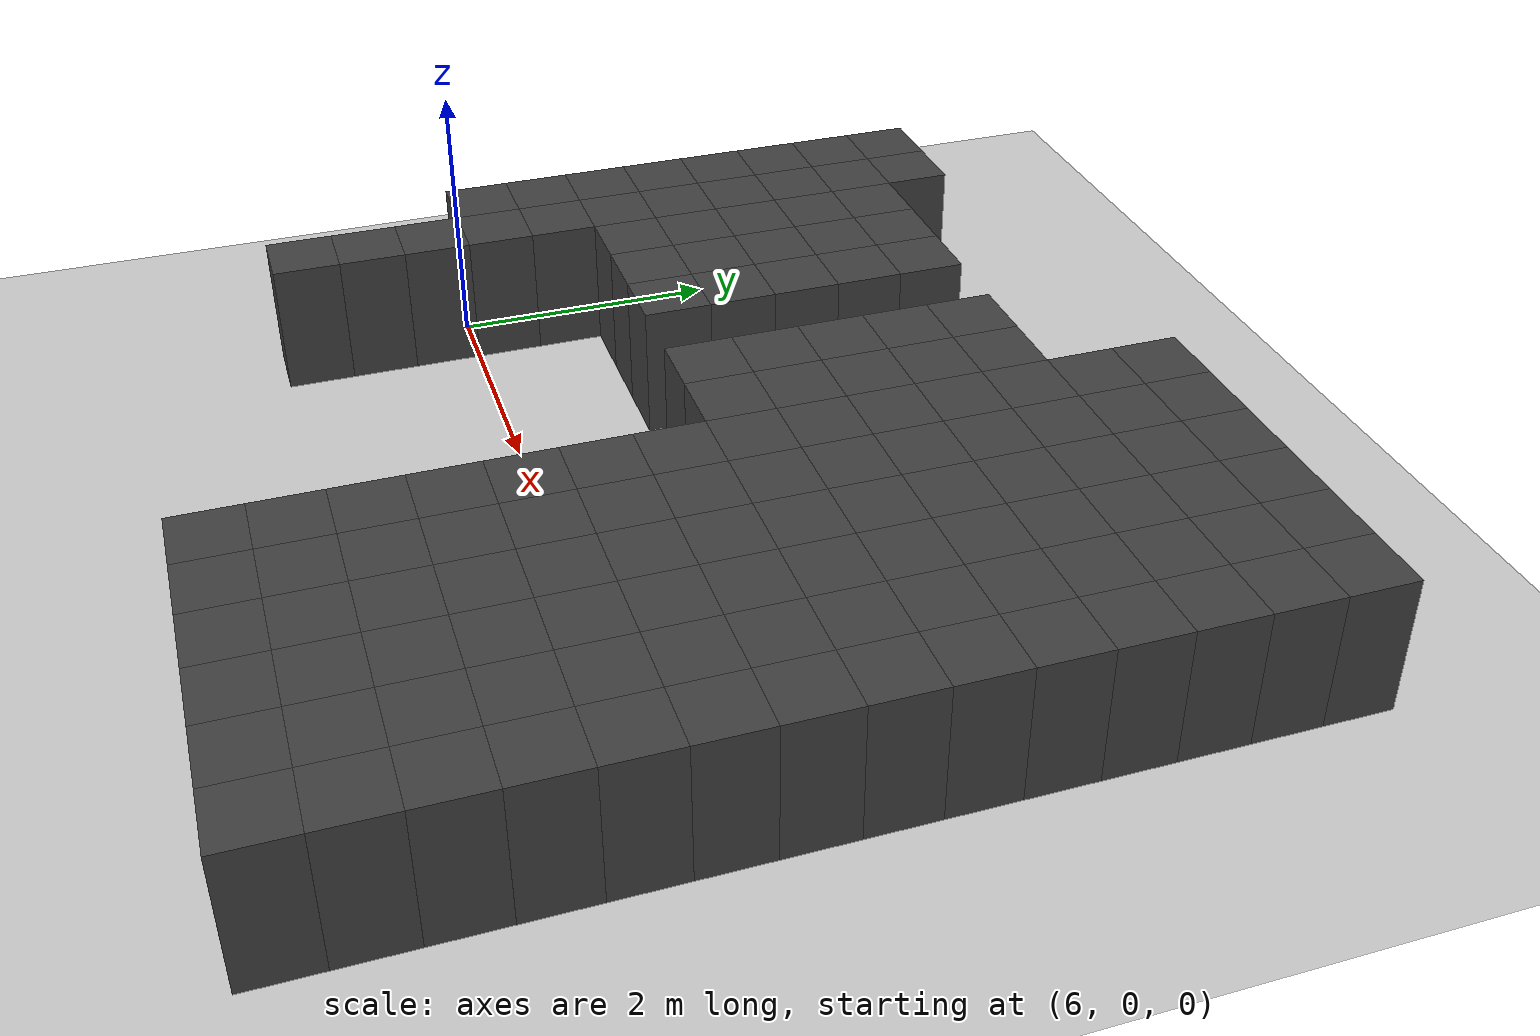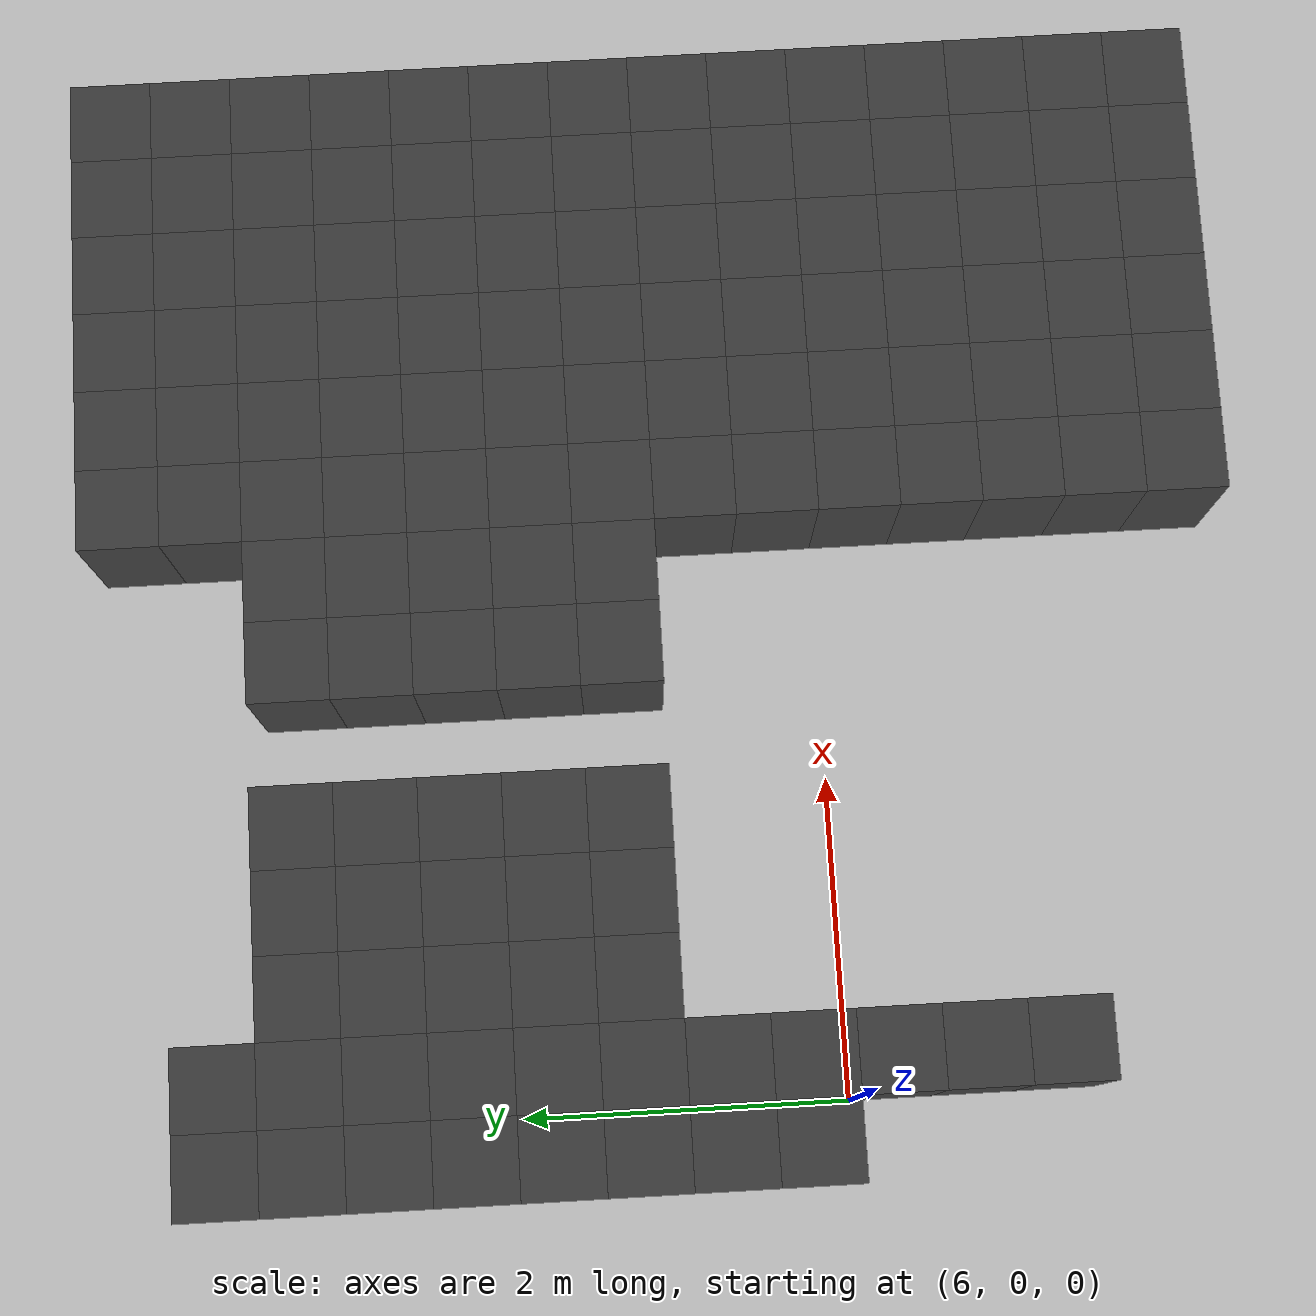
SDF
<sdf version="1.7">
 <world name="map_14980">
  <model name="ground_plane">
   <static>true</static>
   <link name="link">
    <collision name="collision">
     <geometry><plane><normal>0 0 1</normal><size>200 200</size></plane></geometry>
    </collision>
    <visual name="visual">
     <geometry><plane><normal>0 0 1</normal><size>200 200</size></plane></geometry>
     <material><ambient>0.8 0.8 0.8 1</ambient><diffuse>0.8 0.8 0.8 1</diffuse></material>
    </visual>
   </link>
  </model>
  <model name="maze_environment">
   <static>true</static>
   <link name="wall_600">
    <pose>9.750 4.250 0.500 0 0 0</pose>
    <collision name="col"><geometry><box><size>0.5 0.5 1.0</size></box></geometry></collision>
    <visual name="vis">
     <geometry><box><size>0.5 0.5 1.0</size></box></geometry>
     <material><ambient>0.15 0.15 0.15 1</ambient><diffuse>0.25 0.25 0.25 1</diffuse></material>
    </visual>
   </link>
   <link name="wall_601">
    <pose>10.250 4.250 0.500 0 0 0</pose>
    <collision name="col"><geometry><box><size>0.5 0.5 1.0</size></box></geometry></collision>
    <visual name="vis">
     <geometry><box><size>0.5 0.5 1.0</size></box></geometry>
     <material><ambient>0.15 0.15 0.15 1</ambient><diffuse>0.25 0.25 0.25 1</diffuse></material>
    </visual>
   </link>
   <link name="wall_602">
    <pose>10.750 4.250 0.500 0 0 0</pose>
    <collision name="col"><geometry><box><size>0.5 0.5 1.0</size></box></geometry></collision>
    <visual name="vis">
     <geometry><box><size>0.5 0.5 1.0</size></box></geometry>
     <material><ambient>0.15 0.15 0.15 1</ambient><diffuse>0.25 0.25 0.25 1</diffuse></material>
    </visual>
   </link>
   <link name="wall_603">
    <pose>11.250 4.250 0.500 0 0 0</pose>
    <collision name="col"><geometry><box><size>0.5 0.5 1.0</size></box></geometry></collision>
    <visual name="vis">
     <geometry><box><size>0.5 0.5 1.0</size></box></geometry>
     <material><ambient>0.15 0.15 0.15 1</ambient><diffuse>0.25 0.25 0.25 1</diffuse></material>
    </visual>
   </link>
   <link name="wall_604">
    <pose>11.750 4.250 0.500 0 0 0</pose>
    <collision name="col"><geometry><box><size>0.5 0.5 1.0</size></box></geometry></collision>
    <visual name="vis">
     <geometry><box><size>0.5 0.5 1.0</size></box></geometry>
     <material><ambient>0.15 0.15 0.15 1</ambient><diffuse>0.25 0.25 0.25 1</diffuse></material>
    </visual>
   </link>
   <link name="wall_605">
    <pose>12.250 4.250 0.500 0 0 0</pose>
    <collision name="col"><geometry><box><size>0.5 0.5 1.0</size></box></geometry></collision>
    <visual name="vis">
     <geometry><box><size>0.5 0.5 1.0</size></box></geometry>
     <material><ambient>0.15 0.15 0.15 1</ambient><diffuse>0.25 0.25 0.25 1</diffuse></material>
    </visual>
   </link>
   <link name="wall_624">
    <pose>5.750 3.750 0.500 0 0 0</pose>
    <collision name="col"><geometry><box><size>0.5 0.5 1.0</size></box></geometry></collision>
    <visual name="vis">
     <geometry><box><size>0.5 0.5 1.0</size></box></geometry>
     <material><ambient>0.15 0.15 0.15 1</ambient><diffuse>0.25 0.25 0.25 1</diffuse></material>
    </visual>
   </link>
   <link name="wall_625">
    <pose>6.250 3.750 0.500 0 0 0</pose>
    <collision name="col"><geometry><box><size>0.5 0.5 1.0</size></box></geometry></collision>
    <visual name="vis">
     <geometry><box><size>0.5 0.5 1.0</size></box></geometry>
     <material><ambient>0.15 0.15 0.15 1</ambient><diffuse>0.25 0.25 0.25 1</diffuse></material>
    </visual>
   </link>
   <link name="wall_626">
    <pose>9.750 3.750 0.500 0 0 0</pose>
    <collision name="col"><geometry><box><size>0.5 0.5 1.0</size></box></geometry></collision>
    <visual name="vis">
     <geometry><box><size>0.5 0.5 1.0</size></box></geometry>
     <material><ambient>0.15 0.15 0.15 1</ambient><diffuse>0.25 0.25 0.25 1</diffuse></material>
    </visual>
   </link>
   <link name="wall_627">
    <pose>10.250 3.750 0.500 0 0 0</pose>
    <collision name="col"><geometry><box><size>0.5 0.5 1.0</size></box></geometry></collision>
    <visual name="vis">
     <geometry><box><size>0.5 0.5 1.0</size></box></geometry>
     <material><ambient>0.15 0.15 0.15 1</ambient><diffuse>0.25 0.25 0.25 1</diffuse></material>
    </visual>
   </link>
   <link name="wall_628">
    <pose>10.750 3.750 0.500 0 0 0</pose>
    <collision name="col"><geometry><box><size>0.5 0.5 1.0</size></box></geometry></collision>
    <visual name="vis">
     <geometry><box><size>0.5 0.5 1.0</size></box></geometry>
     <material><ambient>0.15 0.15 0.15 1</ambient><diffuse>0.25 0.25 0.25 1</diffuse></material>
    </visual>
   </link>
   <link name="wall_629">
    <pose>11.250 3.750 0.500 0 0 0</pose>
    <collision name="col"><geometry><box><size>0.5 0.5 1.0</size></box></geometry></collision>
    <visual name="vis">
     <geometry><box><size>0.5 0.5 1.0</size></box></geometry>
     <material><ambient>0.15 0.15 0.15 1</ambient><diffuse>0.25 0.25 0.25 1</diffuse></material>
    </visual>
   </link>
   <link name="wall_630">
    <pose>11.750 3.750 0.500 0 0 0</pose>
    <collision name="col"><geometry><box><size>0.5 0.5 1.0</size></box></geometry></collision>
    <visual name="vis">
     <geometry><box><size>0.5 0.5 1.0</size></box></geometry>
     <material><ambient>0.15 0.15 0.15 1</ambient><diffuse>0.25 0.25 0.25 1</diffuse></material>
    </visual>
   </link>
   <link name="wall_631">
    <pose>12.250 3.750 0.500 0 0 0</pose>
    <collision name="col"><geometry><box><size>0.5 0.5 1.0</size></box></geometry></collision>
    <visual name="vis">
     <geometry><box><size>0.5 0.5 1.0</size></box></geometry>
     <material><ambient>0.15 0.15 0.15 1</ambient><diffuse>0.25 0.25 0.25 1</diffuse></material>
    </visual>
   </link>
   <link name="wall_654">
    <pose>5.750 3.250 0.500 0 0 0</pose>
    <collision name="col"><geometry><box><size>0.5 0.5 1.0</size></box></geometry></collision>
    <visual name="vis">
     <geometry><box><size>0.5 0.5 1.0</size></box></geometry>
     <material><ambient>0.15 0.15 0.15 1</ambient><diffuse>0.25 0.25 0.25 1</diffuse></material>
    </visual>
   </link>
   <link name="wall_655">
    <pose>6.250 3.250 0.500 0 0 0</pose>
    <collision name="col"><geometry><box><size>0.5 0.5 1.0</size></box></geometry></collision>
    <visual name="vis">
     <geometry><box><size>0.5 0.5 1.0</size></box></geometry>
     <material><ambient>0.15 0.15 0.15 1</ambient><diffuse>0.25 0.25 0.25 1</diffuse></material>
    </visual>
   </link>
   <link name="wall_656">
    <pose>6.750 3.250 0.500 0 0 0</pose>
    <collision name="col"><geometry><box><size>0.5 0.5 1.0</size></box></geometry></collision>
    <visual name="vis">
     <geometry><box><size>0.5 0.5 1.0</size></box></geometry>
     <material><ambient>0.15 0.15 0.15 1</ambient><diffuse>0.25 0.25 0.25 1</diffuse></material>
    </visual>
   </link>
   <link name="wall_657">
    <pose>7.250 3.250 0.500 0 0 0</pose>
    <collision name="col"><geometry><box><size>0.5 0.5 1.0</size></box></geometry></collision>
    <visual name="vis">
     <geometry><box><size>0.5 0.5 1.0</size></box></geometry>
     <material><ambient>0.15 0.15 0.15 1</ambient><diffuse>0.25 0.25 0.25 1</diffuse></material>
    </visual>
   </link>
   <link name="wall_658">
    <pose>7.750 3.250 0.500 0 0 0</pose>
    <collision name="col"><geometry><box><size>0.5 0.5 1.0</size></box></geometry></collision>
    <visual name="vis">
     <geometry><box><size>0.5 0.5 1.0</size></box></geometry>
     <material><ambient>0.15 0.15 0.15 1</ambient><diffuse>0.25 0.25 0.25 1</diffuse></material>
    </visual>
   </link>
   <link name="wall_659">
    <pose>8.750 3.250 0.500 0 0 0</pose>
    <collision name="col"><geometry><box><size>0.5 0.5 1.0</size></box></geometry></collision>
    <visual name="vis">
     <geometry><box><size>0.5 0.5 1.0</size></box></geometry>
     <material><ambient>0.15 0.15 0.15 1</ambient><diffuse>0.25 0.25 0.25 1</diffuse></material>
    </visual>
   </link>
   <link name="wall_660">
    <pose>9.250 3.250 0.500 0 0 0</pose>
    <collision name="col"><geometry><box><size>0.5 0.5 1.0</size></box></geometry></collision>
    <visual name="vis">
     <geometry><box><size>0.5 0.5 1.0</size></box></geometry>
     <material><ambient>0.15 0.15 0.15 1</ambient><diffuse>0.25 0.25 0.25 1</diffuse></material>
    </visual>
   </link>
   <link name="wall_661">
    <pose>9.750 3.250 0.500 0 0 0</pose>
    <collision name="col"><geometry><box><size>0.5 0.5 1.0</size></box></geometry></collision>
    <visual name="vis">
     <geometry><box><size>0.5 0.5 1.0</size></box></geometry>
     <material><ambient>0.15 0.15 0.15 1</ambient><diffuse>0.25 0.25 0.25 1</diffuse></material>
    </visual>
   </link>
   <link name="wall_662">
    <pose>10.250 3.250 0.500 0 0 0</pose>
    <collision name="col"><geometry><box><size>0.5 0.5 1.0</size></box></geometry></collision>
    <visual name="vis">
     <geometry><box><size>0.5 0.5 1.0</size></box></geometry>
     <material><ambient>0.15 0.15 0.15 1</ambient><diffuse>0.25 0.25 0.25 1</diffuse></material>
    </visual>
   </link>
   <link name="wall_663">
    <pose>10.750 3.250 0.500 0 0 0</pose>
    <collision name="col"><geometry><box><size>0.5 0.5 1.0</size></box></geometry></collision>
    <visual name="vis">
     <geometry><box><size>0.5 0.5 1.0</size></box></geometry>
     <material><ambient>0.15 0.15 0.15 1</ambient><diffuse>0.25 0.25 0.25 1</diffuse></material>
    </visual>
   </link>
   <link name="wall_664">
    <pose>11.250 3.250 0.500 0 0 0</pose>
    <collision name="col"><geometry><box><size>0.5 0.5 1.0</size></box></geometry></collision>
    <visual name="vis">
     <geometry><box><size>0.5 0.5 1.0</size></box></geometry>
     <material><ambient>0.15 0.15 0.15 1</ambient><diffuse>0.25 0.25 0.25 1</diffuse></material>
    </visual>
   </link>
   <link name="wall_665">
    <pose>11.750 3.250 0.500 0 0 0</pose>
    <collision name="col"><geometry><box><size>0.5 0.5 1.0</size></box></geometry></collision>
    <visual name="vis">
     <geometry><box><size>0.5 0.5 1.0</size></box></geometry>
     <material><ambient>0.15 0.15 0.15 1</ambient><diffuse>0.25 0.25 0.25 1</diffuse></material>
    </visual>
   </link>
   <link name="wall_666">
    <pose>12.250 3.250 0.500 0 0 0</pose>
    <collision name="col"><geometry><box><size>0.5 0.5 1.0</size></box></geometry></collision>
    <visual name="vis">
     <geometry><box><size>0.5 0.5 1.0</size></box></geometry>
     <material><ambient>0.15 0.15 0.15 1</ambient><diffuse>0.25 0.25 0.25 1</diffuse></material>
    </visual>
   </link>
   <link name="wall_691">
    <pose>5.750 2.750 0.500 0 0 0</pose>
    <collision name="col"><geometry><box><size>0.5 0.5 1.0</size></box></geometry></collision>
    <visual name="vis">
     <geometry><box><size>0.5 0.5 1.0</size></box></geometry>
     <material><ambient>0.15 0.15 0.15 1</ambient><diffuse>0.25 0.25 0.25 1</diffuse></material>
    </visual>
   </link>
   <link name="wall_692">
    <pose>6.250 2.750 0.500 0 0 0</pose>
    <collision name="col"><geometry><box><size>0.5 0.5 1.0</size></box></geometry></collision>
    <visual name="vis">
     <geometry><box><size>0.5 0.5 1.0</size></box></geometry>
     <material><ambient>0.15 0.15 0.15 1</ambient><diffuse>0.25 0.25 0.25 1</diffuse></material>
    </visual>
   </link>
   <link name="wall_693">
    <pose>6.750 2.750 0.500 0 0 0</pose>
    <collision name="col"><geometry><box><size>0.5 0.5 1.0</size></box></geometry></collision>
    <visual name="vis">
     <geometry><box><size>0.5 0.5 1.0</size></box></geometry>
     <material><ambient>0.15 0.15 0.15 1</ambient><diffuse>0.25 0.25 0.25 1</diffuse></material>
    </visual>
   </link>
   <link name="wall_694">
    <pose>7.250 2.750 0.500 0 0 0</pose>
    <collision name="col"><geometry><box><size>0.5 0.5 1.0</size></box></geometry></collision>
    <visual name="vis">
     <geometry><box><size>0.5 0.5 1.0</size></box></geometry>
     <material><ambient>0.15 0.15 0.15 1</ambient><diffuse>0.25 0.25 0.25 1</diffuse></material>
    </visual>
   </link>
   <link name="wall_695">
    <pose>7.750 2.750 0.500 0 0 0</pose>
    <collision name="col"><geometry><box><size>0.5 0.5 1.0</size></box></geometry></collision>
    <visual name="vis">
     <geometry><box><size>0.5 0.5 1.0</size></box></geometry>
     <material><ambient>0.15 0.15 0.15 1</ambient><diffuse>0.25 0.25 0.25 1</diffuse></material>
    </visual>
   </link>
   <link name="wall_696">
    <pose>8.750 2.750 0.500 0 0 0</pose>
    <collision name="col"><geometry><box><size>0.5 0.5 1.0</size></box></geometry></collision>
    <visual name="vis">
     <geometry><box><size>0.5 0.5 1.0</size></box></geometry>
     <material><ambient>0.15 0.15 0.15 1</ambient><diffuse>0.25 0.25 0.25 1</diffuse></material>
    </visual>
   </link>
   <link name="wall_697">
    <pose>9.250 2.750 0.500 0 0 0</pose>
    <collision name="col"><geometry><box><size>0.5 0.5 1.0</size></box></geometry></collision>
    <visual name="vis">
     <geometry><box><size>0.5 0.5 1.0</size></box></geometry>
     <material><ambient>0.15 0.15 0.15 1</ambient><diffuse>0.25 0.25 0.25 1</diffuse></material>
    </visual>
   </link>
   <link name="wall_698">
    <pose>9.750 2.750 0.500 0 0 0</pose>
    <collision name="col"><geometry><box><size>0.5 0.5 1.0</size></box></geometry></collision>
    <visual name="vis">
     <geometry><box><size>0.5 0.5 1.0</size></box></geometry>
     <material><ambient>0.15 0.15 0.15 1</ambient><diffuse>0.25 0.25 0.25 1</diffuse></material>
    </visual>
   </link>
   <link name="wall_699">
    <pose>10.250 2.750 0.500 0 0 0</pose>
    <collision name="col"><geometry><box><size>0.5 0.5 1.0</size></box></geometry></collision>
    <visual name="vis">
     <geometry><box><size>0.5 0.5 1.0</size></box></geometry>
     <material><ambient>0.15 0.15 0.15 1</ambient><diffuse>0.25 0.25 0.25 1</diffuse></material>
    </visual>
   </link>
   <link name="wall_700">
    <pose>10.750 2.750 0.500 0 0 0</pose>
    <collision name="col"><geometry><box><size>0.5 0.5 1.0</size></box></geometry></collision>
    <visual name="vis">
     <geometry><box><size>0.5 0.5 1.0</size></box></geometry>
     <material><ambient>0.15 0.15 0.15 1</ambient><diffuse>0.25 0.25 0.25 1</diffuse></material>
    </visual>
   </link>
   <link name="wall_701">
    <pose>11.250 2.750 0.500 0 0 0</pose>
    <collision name="col"><geometry><box><size>0.5 0.5 1.0</size></box></geometry></collision>
    <visual name="vis">
     <geometry><box><size>0.5 0.5 1.0</size></box></geometry>
     <material><ambient>0.15 0.15 0.15 1</ambient><diffuse>0.25 0.25 0.25 1</diffuse></material>
    </visual>
   </link>
   <link name="wall_702">
    <pose>11.750 2.750 0.500 0 0 0</pose>
    <collision name="col"><geometry><box><size>0.5 0.5 1.0</size></box></geometry></collision>
    <visual name="vis">
     <geometry><box><size>0.5 0.5 1.0</size></box></geometry>
     <material><ambient>0.15 0.15 0.15 1</ambient><diffuse>0.25 0.25 0.25 1</diffuse></material>
    </visual>
   </link>
   <link name="wall_703">
    <pose>12.250 2.750 0.500 0 0 0</pose>
    <collision name="col"><geometry><box><size>0.5 0.5 1.0</size></box></geometry></collision>
    <visual name="vis">
     <geometry><box><size>0.5 0.5 1.0</size></box></geometry>
     <material><ambient>0.15 0.15 0.15 1</ambient><diffuse>0.25 0.25 0.25 1</diffuse></material>
    </visual>
   </link>
   <link name="wall_730">
    <pose>5.750 2.250 0.500 0 0 0</pose>
    <collision name="col"><geometry><box><size>0.5 0.5 1.0</size></box></geometry></collision>
    <visual name="vis">
     <geometry><box><size>0.5 0.5 1.0</size></box></geometry>
     <material><ambient>0.15 0.15 0.15 1</ambient><diffuse>0.25 0.25 0.25 1</diffuse></material>
    </visual>
   </link>
   <link name="wall_731">
    <pose>6.250 2.250 0.500 0 0 0</pose>
    <collision name="col"><geometry><box><size>0.5 0.5 1.0</size></box></geometry></collision>
    <visual name="vis">
     <geometry><box><size>0.5 0.5 1.0</size></box></geometry>
     <material><ambient>0.15 0.15 0.15 1</ambient><diffuse>0.25 0.25 0.25 1</diffuse></material>
    </visual>
   </link>
   <link name="wall_732">
    <pose>6.750 2.250 0.500 0 0 0</pose>
    <collision name="col"><geometry><box><size>0.5 0.5 1.0</size></box></geometry></collision>
    <visual name="vis">
     <geometry><box><size>0.5 0.5 1.0</size></box></geometry>
     <material><ambient>0.15 0.15 0.15 1</ambient><diffuse>0.25 0.25 0.25 1</diffuse></material>
    </visual>
   </link>
   <link name="wall_733">
    <pose>7.250 2.250 0.500 0 0 0</pose>
    <collision name="col"><geometry><box><size>0.5 0.5 1.0</size></box></geometry></collision>
    <visual name="vis">
     <geometry><box><size>0.5 0.5 1.0</size></box></geometry>
     <material><ambient>0.15 0.15 0.15 1</ambient><diffuse>0.25 0.25 0.25 1</diffuse></material>
    </visual>
   </link>
   <link name="wall_734">
    <pose>7.750 2.250 0.500 0 0 0</pose>
    <collision name="col"><geometry><box><size>0.5 0.5 1.0</size></box></geometry></collision>
    <visual name="vis">
     <geometry><box><size>0.5 0.5 1.0</size></box></geometry>
     <material><ambient>0.15 0.15 0.15 1</ambient><diffuse>0.25 0.25 0.25 1</diffuse></material>
    </visual>
   </link>
   <link name="wall_735">
    <pose>8.750 2.250 0.500 0 0 0</pose>
    <collision name="col"><geometry><box><size>0.5 0.5 1.0</size></box></geometry></collision>
    <visual name="vis">
     <geometry><box><size>0.5 0.5 1.0</size></box></geometry>
     <material><ambient>0.15 0.15 0.15 1</ambient><diffuse>0.25 0.25 0.25 1</diffuse></material>
    </visual>
   </link>
   <link name="wall_736">
    <pose>9.250 2.250 0.500 0 0 0</pose>
    <collision name="col"><geometry><box><size>0.5 0.5 1.0</size></box></geometry></collision>
    <visual name="vis">
     <geometry><box><size>0.5 0.5 1.0</size></box></geometry>
     <material><ambient>0.15 0.15 0.15 1</ambient><diffuse>0.25 0.25 0.25 1</diffuse></material>
    </visual>
   </link>
   <link name="wall_737">
    <pose>9.750 2.250 0.500 0 0 0</pose>
    <collision name="col"><geometry><box><size>0.5 0.5 1.0</size></box></geometry></collision>
    <visual name="vis">
     <geometry><box><size>0.5 0.5 1.0</size></box></geometry>
     <material><ambient>0.15 0.15 0.15 1</ambient><diffuse>0.25 0.25 0.25 1</diffuse></material>
    </visual>
   </link>
   <link name="wall_738">
    <pose>10.250 2.250 0.500 0 0 0</pose>
    <collision name="col"><geometry><box><size>0.5 0.5 1.0</size></box></geometry></collision>
    <visual name="vis">
     <geometry><box><size>0.5 0.5 1.0</size></box></geometry>
     <material><ambient>0.15 0.15 0.15 1</ambient><diffuse>0.25 0.25 0.25 1</diffuse></material>
    </visual>
   </link>
   <link name="wall_739">
    <pose>10.750 2.250 0.500 0 0 0</pose>
    <collision name="col"><geometry><box><size>0.5 0.5 1.0</size></box></geometry></collision>
    <visual name="vis">
     <geometry><box><size>0.5 0.5 1.0</size></box></geometry>
     <material><ambient>0.15 0.15 0.15 1</ambient><diffuse>0.25 0.25 0.25 1</diffuse></material>
    </visual>
   </link>
   <link name="wall_740">
    <pose>11.250 2.250 0.500 0 0 0</pose>
    <collision name="col"><geometry><box><size>0.5 0.5 1.0</size></box></geometry></collision>
    <visual name="vis">
     <geometry><box><size>0.5 0.5 1.0</size></box></geometry>
     <material><ambient>0.15 0.15 0.15 1</ambient><diffuse>0.25 0.25 0.25 1</diffuse></material>
    </visual>
   </link>
   <link name="wall_741">
    <pose>11.750 2.250 0.500 0 0 0</pose>
    <collision name="col"><geometry><box><size>0.5 0.5 1.0</size></box></geometry></collision>
    <visual name="vis">
     <geometry><box><size>0.5 0.5 1.0</size></box></geometry>
     <material><ambient>0.15 0.15 0.15 1</ambient><diffuse>0.25 0.25 0.25 1</diffuse></material>
    </visual>
   </link>
   <link name="wall_742">
    <pose>12.250 2.250 0.500 0 0 0</pose>
    <collision name="col"><geometry><box><size>0.5 0.5 1.0</size></box></geometry></collision>
    <visual name="vis">
     <geometry><box><size>0.5 0.5 1.0</size></box></geometry>
     <material><ambient>0.15 0.15 0.15 1</ambient><diffuse>0.25 0.25 0.25 1</diffuse></material>
    </visual>
   </link>
   <link name="wall_764">
    <pose>5.750 1.750 0.500 0 0 0</pose>
    <collision name="col"><geometry><box><size>0.5 0.5 1.0</size></box></geometry></collision>
    <visual name="vis">
     <geometry><box><size>0.5 0.5 1.0</size></box></geometry>
     <material><ambient>0.15 0.15 0.15 1</ambient><diffuse>0.25 0.25 0.25 1</diffuse></material>
    </visual>
   </link>
   <link name="wall_765">
    <pose>6.250 1.750 0.500 0 0 0</pose>
    <collision name="col"><geometry><box><size>0.5 0.5 1.0</size></box></geometry></collision>
    <visual name="vis">
     <geometry><box><size>0.5 0.5 1.0</size></box></geometry>
     <material><ambient>0.15 0.15 0.15 1</ambient><diffuse>0.25 0.25 0.25 1</diffuse></material>
    </visual>
   </link>
   <link name="wall_766">
    <pose>6.750 1.750 0.500 0 0 0</pose>
    <collision name="col"><geometry><box><size>0.5 0.5 1.0</size></box></geometry></collision>
    <visual name="vis">
     <geometry><box><size>0.5 0.5 1.0</size></box></geometry>
     <material><ambient>0.15 0.15 0.15 1</ambient><diffuse>0.25 0.25 0.25 1</diffuse></material>
    </visual>
   </link>
   <link name="wall_767">
    <pose>7.250 1.750 0.500 0 0 0</pose>
    <collision name="col"><geometry><box><size>0.5 0.5 1.0</size></box></geometry></collision>
    <visual name="vis">
     <geometry><box><size>0.5 0.5 1.0</size></box></geometry>
     <material><ambient>0.15 0.15 0.15 1</ambient><diffuse>0.25 0.25 0.25 1</diffuse></material>
    </visual>
   </link>
   <link name="wall_768">
    <pose>7.750 1.750 0.500 0 0 0</pose>
    <collision name="col"><geometry><box><size>0.5 0.5 1.0</size></box></geometry></collision>
    <visual name="vis">
     <geometry><box><size>0.5 0.5 1.0</size></box></geometry>
     <material><ambient>0.15 0.15 0.15 1</ambient><diffuse>0.25 0.25 0.25 1</diffuse></material>
    </visual>
   </link>
   <link name="wall_769">
    <pose>8.750 1.750 0.500 0 0 0</pose>
    <collision name="col"><geometry><box><size>0.5 0.5 1.0</size></box></geometry></collision>
    <visual name="vis">
     <geometry><box><size>0.5 0.5 1.0</size></box></geometry>
     <material><ambient>0.15 0.15 0.15 1</ambient><diffuse>0.25 0.25 0.25 1</diffuse></material>
    </visual>
   </link>
   <link name="wall_770">
    <pose>9.250 1.750 0.500 0 0 0</pose>
    <collision name="col"><geometry><box><size>0.5 0.5 1.0</size></box></geometry></collision>
    <visual name="vis">
     <geometry><box><size>0.5 0.5 1.0</size></box></geometry>
     <material><ambient>0.15 0.15 0.15 1</ambient><diffuse>0.25 0.25 0.25 1</diffuse></material>
    </visual>
   </link>
   <link name="wall_771">
    <pose>9.750 1.750 0.500 0 0 0</pose>
    <collision name="col"><geometry><box><size>0.5 0.5 1.0</size></box></geometry></collision>
    <visual name="vis">
     <geometry><box><size>0.5 0.5 1.0</size></box></geometry>
     <material><ambient>0.15 0.15 0.15 1</ambient><diffuse>0.25 0.25 0.25 1</diffuse></material>
    </visual>
   </link>
   <link name="wall_772">
    <pose>10.250 1.750 0.500 0 0 0</pose>
    <collision name="col"><geometry><box><size>0.5 0.5 1.0</size></box></geometry></collision>
    <visual name="vis">
     <geometry><box><size>0.5 0.5 1.0</size></box></geometry>
     <material><ambient>0.15 0.15 0.15 1</ambient><diffuse>0.25 0.25 0.25 1</diffuse></material>
    </visual>
   </link>
   <link name="wall_773">
    <pose>10.750 1.750 0.500 0 0 0</pose>
    <collision name="col"><geometry><box><size>0.5 0.5 1.0</size></box></geometry></collision>
    <visual name="vis">
     <geometry><box><size>0.5 0.5 1.0</size></box></geometry>
     <material><ambient>0.15 0.15 0.15 1</ambient><diffuse>0.25 0.25 0.25 1</diffuse></material>
    </visual>
   </link>
   <link name="wall_774">
    <pose>11.250 1.750 0.500 0 0 0</pose>
    <collision name="col"><geometry><box><size>0.5 0.5 1.0</size></box></geometry></collision>
    <visual name="vis">
     <geometry><box><size>0.5 0.5 1.0</size></box></geometry>
     <material><ambient>0.15 0.15 0.15 1</ambient><diffuse>0.25 0.25 0.25 1</diffuse></material>
    </visual>
   </link>
   <link name="wall_775">
    <pose>11.750 1.750 0.500 0 0 0</pose>
    <collision name="col"><geometry><box><size>0.5 0.5 1.0</size></box></geometry></collision>
    <visual name="vis">
     <geometry><box><size>0.5 0.5 1.0</size></box></geometry>
     <material><ambient>0.15 0.15 0.15 1</ambient><diffuse>0.25 0.25 0.25 1</diffuse></material>
    </visual>
   </link>
   <link name="wall_776">
    <pose>12.250 1.750 0.500 0 0 0</pose>
    <collision name="col"><geometry><box><size>0.5 0.5 1.0</size></box></geometry></collision>
    <visual name="vis">
     <geometry><box><size>0.5 0.5 1.0</size></box></geometry>
     <material><ambient>0.15 0.15 0.15 1</ambient><diffuse>0.25 0.25 0.25 1</diffuse></material>
    </visual>
   </link>
   <link name="wall_796">
    <pose>5.750 1.250 0.500 0 0 0</pose>
    <collision name="col"><geometry><box><size>0.5 0.5 1.0</size></box></geometry></collision>
    <visual name="vis">
     <geometry><box><size>0.5 0.5 1.0</size></box></geometry>
     <material><ambient>0.15 0.15 0.15 1</ambient><diffuse>0.25 0.25 0.25 1</diffuse></material>
    </visual>
   </link>
   <link name="wall_797">
    <pose>6.250 1.250 0.500 0 0 0</pose>
    <collision name="col"><geometry><box><size>0.5 0.5 1.0</size></box></geometry></collision>
    <visual name="vis">
     <geometry><box><size>0.5 0.5 1.0</size></box></geometry>
     <material><ambient>0.15 0.15 0.15 1</ambient><diffuse>0.25 0.25 0.25 1</diffuse></material>
    </visual>
   </link>
   <link name="wall_798">
    <pose>6.750 1.250 0.500 0 0 0</pose>
    <collision name="col"><geometry><box><size>0.5 0.5 1.0</size></box></geometry></collision>
    <visual name="vis">
     <geometry><box><size>0.5 0.5 1.0</size></box></geometry>
     <material><ambient>0.15 0.15 0.15 1</ambient><diffuse>0.25 0.25 0.25 1</diffuse></material>
    </visual>
   </link>
   <link name="wall_799">
    <pose>7.250 1.250 0.500 0 0 0</pose>
    <collision name="col"><geometry><box><size>0.5 0.5 1.0</size></box></geometry></collision>
    <visual name="vis">
     <geometry><box><size>0.5 0.5 1.0</size></box></geometry>
     <material><ambient>0.15 0.15 0.15 1</ambient><diffuse>0.25 0.25 0.25 1</diffuse></material>
    </visual>
   </link>
   <link name="wall_800">
    <pose>7.750 1.250 0.500 0 0 0</pose>
    <collision name="col"><geometry><box><size>0.5 0.5 1.0</size></box></geometry></collision>
    <visual name="vis">
     <geometry><box><size>0.5 0.5 1.0</size></box></geometry>
     <material><ambient>0.15 0.15 0.15 1</ambient><diffuse>0.25 0.25 0.25 1</diffuse></material>
    </visual>
   </link>
   <link name="wall_801">
    <pose>8.750 1.250 0.500 0 0 0</pose>
    <collision name="col"><geometry><box><size>0.5 0.5 1.0</size></box></geometry></collision>
    <visual name="vis">
     <geometry><box><size>0.5 0.5 1.0</size></box></geometry>
     <material><ambient>0.15 0.15 0.15 1</ambient><diffuse>0.25 0.25 0.25 1</diffuse></material>
    </visual>
   </link>
   <link name="wall_802">
    <pose>9.250 1.250 0.500 0 0 0</pose>
    <collision name="col"><geometry><box><size>0.5 0.5 1.0</size></box></geometry></collision>
    <visual name="vis">
     <geometry><box><size>0.5 0.5 1.0</size></box></geometry>
     <material><ambient>0.15 0.15 0.15 1</ambient><diffuse>0.25 0.25 0.25 1</diffuse></material>
    </visual>
   </link>
   <link name="wall_803">
    <pose>9.750 1.250 0.500 0 0 0</pose>
    <collision name="col"><geometry><box><size>0.5 0.5 1.0</size></box></geometry></collision>
    <visual name="vis">
     <geometry><box><size>0.5 0.5 1.0</size></box></geometry>
     <material><ambient>0.15 0.15 0.15 1</ambient><diffuse>0.25 0.25 0.25 1</diffuse></material>
    </visual>
   </link>
   <link name="wall_804">
    <pose>10.250 1.250 0.500 0 0 0</pose>
    <collision name="col"><geometry><box><size>0.5 0.5 1.0</size></box></geometry></collision>
    <visual name="vis">
     <geometry><box><size>0.5 0.5 1.0</size></box></geometry>
     <material><ambient>0.15 0.15 0.15 1</ambient><diffuse>0.25 0.25 0.25 1</diffuse></material>
    </visual>
   </link>
   <link name="wall_805">
    <pose>10.750 1.250 0.500 0 0 0</pose>
    <collision name="col"><geometry><box><size>0.5 0.5 1.0</size></box></geometry></collision>
    <visual name="vis">
     <geometry><box><size>0.5 0.5 1.0</size></box></geometry>
     <material><ambient>0.15 0.15 0.15 1</ambient><diffuse>0.25 0.25 0.25 1</diffuse></material>
    </visual>
   </link>
   <link name="wall_806">
    <pose>11.250 1.250 0.500 0 0 0</pose>
    <collision name="col"><geometry><box><size>0.5 0.5 1.0</size></box></geometry></collision>
    <visual name="vis">
     <geometry><box><size>0.5 0.5 1.0</size></box></geometry>
     <material><ambient>0.15 0.15 0.15 1</ambient><diffuse>0.25 0.25 0.25 1</diffuse></material>
    </visual>
   </link>
   <link name="wall_807">
    <pose>11.750 1.250 0.500 0 0 0</pose>
    <collision name="col"><geometry><box><size>0.5 0.5 1.0</size></box></geometry></collision>
    <visual name="vis">
     <geometry><box><size>0.5 0.5 1.0</size></box></geometry>
     <material><ambient>0.15 0.15 0.15 1</ambient><diffuse>0.25 0.25 0.25 1</diffuse></material>
    </visual>
   </link>
   <link name="wall_808">
    <pose>12.250 1.250 0.500 0 0 0</pose>
    <collision name="col"><geometry><box><size>0.5 0.5 1.0</size></box></geometry></collision>
    <visual name="vis">
     <geometry><box><size>0.5 0.5 1.0</size></box></geometry>
     <material><ambient>0.15 0.15 0.15 1</ambient><diffuse>0.25 0.25 0.25 1</diffuse></material>
    </visual>
   </link>
   <link name="wall_828">
    <pose>5.750 0.750 0.500 0 0 0</pose>
    <collision name="col"><geometry><box><size>0.5 0.5 1.0</size></box></geometry></collision>
    <visual name="vis">
     <geometry><box><size>0.5 0.5 1.0</size></box></geometry>
     <material><ambient>0.15 0.15 0.15 1</ambient><diffuse>0.25 0.25 0.25 1</diffuse></material>
    </visual>
   </link>
   <link name="wall_829">
    <pose>6.250 0.750 0.500 0 0 0</pose>
    <collision name="col"><geometry><box><size>0.5 0.5 1.0</size></box></geometry></collision>
    <visual name="vis">
     <geometry><box><size>0.5 0.5 1.0</size></box></geometry>
     <material><ambient>0.15 0.15 0.15 1</ambient><diffuse>0.25 0.25 0.25 1</diffuse></material>
    </visual>
   </link>
   <link name="wall_830">
    <pose>9.750 0.750 0.500 0 0 0</pose>
    <collision name="col"><geometry><box><size>0.5 0.5 1.0</size></box></geometry></collision>
    <visual name="vis">
     <geometry><box><size>0.5 0.5 1.0</size></box></geometry>
     <material><ambient>0.15 0.15 0.15 1</ambient><diffuse>0.25 0.25 0.25 1</diffuse></material>
    </visual>
   </link>
   <link name="wall_831">
    <pose>10.250 0.750 0.500 0 0 0</pose>
    <collision name="col"><geometry><box><size>0.5 0.5 1.0</size></box></geometry></collision>
    <visual name="vis">
     <geometry><box><size>0.5 0.5 1.0</size></box></geometry>
     <material><ambient>0.15 0.15 0.15 1</ambient><diffuse>0.25 0.25 0.25 1</diffuse></material>
    </visual>
   </link>
   <link name="wall_832">
    <pose>10.750 0.750 0.500 0 0 0</pose>
    <collision name="col"><geometry><box><size>0.5 0.5 1.0</size></box></geometry></collision>
    <visual name="vis">
     <geometry><box><size>0.5 0.5 1.0</size></box></geometry>
     <material><ambient>0.15 0.15 0.15 1</ambient><diffuse>0.25 0.25 0.25 1</diffuse></material>
    </visual>
   </link>
   <link name="wall_833">
    <pose>11.250 0.750 0.500 0 0 0</pose>
    <collision name="col"><geometry><box><size>0.5 0.5 1.0</size></box></geometry></collision>
    <visual name="vis">
     <geometry><box><size>0.5 0.5 1.0</size></box></geometry>
     <material><ambient>0.15 0.15 0.15 1</ambient><diffuse>0.25 0.25 0.25 1</diffuse></material>
    </visual>
   </link>
   <link name="wall_834">
    <pose>11.750 0.750 0.500 0 0 0</pose>
    <collision name="col"><geometry><box><size>0.5 0.5 1.0</size></box></geometry></collision>
    <visual name="vis">
     <geometry><box><size>0.5 0.5 1.0</size></box></geometry>
     <material><ambient>0.15 0.15 0.15 1</ambient><diffuse>0.25 0.25 0.25 1</diffuse></material>
    </visual>
   </link>
   <link name="wall_835">
    <pose>12.250 0.750 0.500 0 0 0</pose>
    <collision name="col"><geometry><box><size>0.5 0.5 1.0</size></box></geometry></collision>
    <visual name="vis">
     <geometry><box><size>0.5 0.5 1.0</size></box></geometry>
     <material><ambient>0.15 0.15 0.15 1</ambient><diffuse>0.25 0.25 0.25 1</diffuse></material>
    </visual>
   </link>
   <link name="wall_857">
    <pose>5.750 0.250 0.500 0 0 0</pose>
    <collision name="col"><geometry><box><size>0.5 0.5 1.0</size></box></geometry></collision>
    <visual name="vis">
     <geometry><box><size>0.5 0.5 1.0</size></box></geometry>
     <material><ambient>0.15 0.15 0.15 1</ambient><diffuse>0.25 0.25 0.25 1</diffuse></material>
    </visual>
   </link>
   <link name="wall_858">
    <pose>6.250 0.250 0.500 0 0 0</pose>
    <collision name="col"><geometry><box><size>0.5 0.5 1.0</size></box></geometry></collision>
    <visual name="vis">
     <geometry><box><size>0.5 0.5 1.0</size></box></geometry>
     <material><ambient>0.15 0.15 0.15 1</ambient><diffuse>0.25 0.25 0.25 1</diffuse></material>
    </visual>
   </link>
   <link name="wall_859">
    <pose>9.750 0.250 0.500 0 0 0</pose>
    <collision name="col"><geometry><box><size>0.5 0.5 1.0</size></box></geometry></collision>
    <visual name="vis">
     <geometry><box><size>0.5 0.5 1.0</size></box></geometry>
     <material><ambient>0.15 0.15 0.15 1</ambient><diffuse>0.25 0.25 0.25 1</diffuse></material>
    </visual>
   </link>
   <link name="wall_860">
    <pose>10.250 0.250 0.500 0 0 0</pose>
    <collision name="col"><geometry><box><size>0.5 0.5 1.0</size></box></geometry></collision>
    <visual name="vis">
     <geometry><box><size>0.5 0.5 1.0</size></box></geometry>
     <material><ambient>0.15 0.15 0.15 1</ambient><diffuse>0.25 0.25 0.25 1</diffuse></material>
    </visual>
   </link>
   <link name="wall_861">
    <pose>10.750 0.250 0.500 0 0 0</pose>
    <collision name="col"><geometry><box><size>0.5 0.5 1.0</size></box></geometry></collision>
    <visual name="vis">
     <geometry><box><size>0.5 0.5 1.0</size></box></geometry>
     <material><ambient>0.15 0.15 0.15 1</ambient><diffuse>0.25 0.25 0.25 1</diffuse></material>
    </visual>
   </link>
   <link name="wall_862">
    <pose>11.250 0.250 0.500 0 0 0</pose>
    <collision name="col"><geometry><box><size>0.5 0.5 1.0</size></box></geometry></collision>
    <visual name="vis">
     <geometry><box><size>0.5 0.5 1.0</size></box></geometry>
     <material><ambient>0.15 0.15 0.15 1</ambient><diffuse>0.25 0.25 0.25 1</diffuse></material>
    </visual>
   </link>
   <link name="wall_863">
    <pose>11.750 0.250 0.500 0 0 0</pose>
    <collision name="col"><geometry><box><size>0.5 0.5 1.0</size></box></geometry></collision>
    <visual name="vis">
     <geometry><box><size>0.5 0.5 1.0</size></box></geometry>
     <material><ambient>0.15 0.15 0.15 1</ambient><diffuse>0.25 0.25 0.25 1</diffuse></material>
    </visual>
   </link>
   <link name="wall_864">
    <pose>12.250 0.250 0.500 0 0 0</pose>
    <collision name="col"><geometry><box><size>0.5 0.5 1.0</size></box></geometry></collision>
    <visual name="vis">
     <geometry><box><size>0.5 0.5 1.0</size></box></geometry>
     <material><ambient>0.15 0.15 0.15 1</ambient><diffuse>0.25 0.25 0.25 1</diffuse></material>
    </visual>
   </link>
   <link name="wall_897">
    <pose>6.250 -0.250 0.500 0 0 0</pose>
    <collision name="col"><geometry><box><size>0.5 0.5 1.0</size></box></geometry></collision>
    <visual name="vis">
     <geometry><box><size>0.5 0.5 1.0</size></box></geometry>
     <material><ambient>0.15 0.15 0.15 1</ambient><diffuse>0.25 0.25 0.25 1</diffuse></material>
    </visual>
   </link>
   <link name="wall_898">
    <pose>9.750 -0.250 0.500 0 0 0</pose>
    <collision name="col"><geometry><box><size>0.5 0.5 1.0</size></box></geometry></collision>
    <visual name="vis">
     <geometry><box><size>0.5 0.5 1.0</size></box></geometry>
     <material><ambient>0.15 0.15 0.15 1</ambient><diffuse>0.25 0.25 0.25 1</diffuse></material>
    </visual>
   </link>
   <link name="wall_899">
    <pose>10.250 -0.250 0.500 0 0 0</pose>
    <collision name="col"><geometry><box><size>0.5 0.5 1.0</size></box></geometry></collision>
    <visual name="vis">
     <geometry><box><size>0.5 0.5 1.0</size></box></geometry>
     <material><ambient>0.15 0.15 0.15 1</ambient><diffuse>0.25 0.25 0.25 1</diffuse></material>
    </visual>
   </link>
   <link name="wall_900">
    <pose>10.750 -0.250 0.500 0 0 0</pose>
    <collision name="col"><geometry><box><size>0.5 0.5 1.0</size></box></geometry></collision>
    <visual name="vis">
     <geometry><box><size>0.5 0.5 1.0</size></box></geometry>
     <material><ambient>0.15 0.15 0.15 1</ambient><diffuse>0.25 0.25 0.25 1</diffuse></material>
    </visual>
   </link>
   <link name="wall_901">
    <pose>11.250 -0.250 0.500 0 0 0</pose>
    <collision name="col"><geometry><box><size>0.5 0.5 1.0</size></box></geometry></collision>
    <visual name="vis">
     <geometry><box><size>0.5 0.5 1.0</size></box></geometry>
     <material><ambient>0.15 0.15 0.15 1</ambient><diffuse>0.25 0.25 0.25 1</diffuse></material>
    </visual>
   </link>
   <link name="wall_902">
    <pose>11.750 -0.250 0.500 0 0 0</pose>
    <collision name="col"><geometry><box><size>0.5 0.5 1.0</size></box></geometry></collision>
    <visual name="vis">
     <geometry><box><size>0.5 0.5 1.0</size></box></geometry>
     <material><ambient>0.15 0.15 0.15 1</ambient><diffuse>0.25 0.25 0.25 1</diffuse></material>
    </visual>
   </link>
   <link name="wall_903">
    <pose>12.250 -0.250 0.500 0 0 0</pose>
    <collision name="col"><geometry><box><size>0.5 0.5 1.0</size></box></geometry></collision>
    <visual name="vis">
     <geometry><box><size>0.5 0.5 1.0</size></box></geometry>
     <material><ambient>0.15 0.15 0.15 1</ambient><diffuse>0.25 0.25 0.25 1</diffuse></material>
    </visual>
   </link>
   <link name="wall_940">
    <pose>6.250 -0.750 0.500 0 0 0</pose>
    <collision name="col"><geometry><box><size>0.5 0.5 1.0</size></box></geometry></collision>
    <visual name="vis">
     <geometry><box><size>0.5 0.5 1.0</size></box></geometry>
     <material><ambient>0.15 0.15 0.15 1</ambient><diffuse>0.25 0.25 0.25 1</diffuse></material>
    </visual>
   </link>
   <link name="wall_941">
    <pose>9.750 -0.750 0.500 0 0 0</pose>
    <collision name="col"><geometry><box><size>0.5 0.5 1.0</size></box></geometry></collision>
    <visual name="vis">
     <geometry><box><size>0.5 0.5 1.0</size></box></geometry>
     <material><ambient>0.15 0.15 0.15 1</ambient><diffuse>0.25 0.25 0.25 1</diffuse></material>
    </visual>
   </link>
   <link name="wall_942">
    <pose>10.250 -0.750 0.500 0 0 0</pose>
    <collision name="col"><geometry><box><size>0.5 0.5 1.0</size></box></geometry></collision>
    <visual name="vis">
     <geometry><box><size>0.5 0.5 1.0</size></box></geometry>
     <material><ambient>0.15 0.15 0.15 1</ambient><diffuse>0.25 0.25 0.25 1</diffuse></material>
    </visual>
   </link>
   <link name="wall_943">
    <pose>10.750 -0.750 0.500 0 0 0</pose>
    <collision name="col"><geometry><box><size>0.5 0.5 1.0</size></box></geometry></collision>
    <visual name="vis">
     <geometry><box><size>0.5 0.5 1.0</size></box></geometry>
     <material><ambient>0.15 0.15 0.15 1</ambient><diffuse>0.25 0.25 0.25 1</diffuse></material>
    </visual>
   </link>
   <link name="wall_944">
    <pose>11.250 -0.750 0.500 0 0 0</pose>
    <collision name="col"><geometry><box><size>0.5 0.5 1.0</size></box></geometry></collision>
    <visual name="vis">
     <geometry><box><size>0.5 0.5 1.0</size></box></geometry>
     <material><ambient>0.15 0.15 0.15 1</ambient><diffuse>0.25 0.25 0.25 1</diffuse></material>
    </visual>
   </link>
   <link name="wall_945">
    <pose>11.750 -0.750 0.500 0 0 0</pose>
    <collision name="col"><geometry><box><size>0.5 0.5 1.0</size></box></geometry></collision>
    <visual name="vis">
     <geometry><box><size>0.5 0.5 1.0</size></box></geometry>
     <material><ambient>0.15 0.15 0.15 1</ambient><diffuse>0.25 0.25 0.25 1</diffuse></material>
    </visual>
   </link>
   <link name="wall_946">
    <pose>12.250 -0.750 0.500 0 0 0</pose>
    <collision name="col"><geometry><box><size>0.5 0.5 1.0</size></box></geometry></collision>
    <visual name="vis">
     <geometry><box><size>0.5 0.5 1.0</size></box></geometry>
     <material><ambient>0.15 0.15 0.15 1</ambient><diffuse>0.25 0.25 0.25 1</diffuse></material>
    </visual>
   </link>
   <link name="wall_983">
    <pose>6.250 -1.250 0.500 0 0 0</pose>
    <collision name="col"><geometry><box><size>0.5 0.5 1.0</size></box></geometry></collision>
    <visual name="vis">
     <geometry><box><size>0.5 0.5 1.0</size></box></geometry>
     <material><ambient>0.15 0.15 0.15 1</ambient><diffuse>0.25 0.25 0.25 1</diffuse></material>
    </visual>
   </link>
   <link name="wall_984">
    <pose>9.750 -1.250 0.500 0 0 0</pose>
    <collision name="col"><geometry><box><size>0.5 0.5 1.0</size></box></geometry></collision>
    <visual name="vis">
     <geometry><box><size>0.5 0.5 1.0</size></box></geometry>
     <material><ambient>0.15 0.15 0.15 1</ambient><diffuse>0.25 0.25 0.25 1</diffuse></material>
    </visual>
   </link>
   <link name="wall_985">
    <pose>10.250 -1.250 0.500 0 0 0</pose>
    <collision name="col"><geometry><box><size>0.5 0.5 1.0</size></box></geometry></collision>
    <visual name="vis">
     <geometry><box><size>0.5 0.5 1.0</size></box></geometry>
     <material><ambient>0.15 0.15 0.15 1</ambient><diffuse>0.25 0.25 0.25 1</diffuse></material>
    </visual>
   </link>
   <link name="wall_986">
    <pose>10.750 -1.250 0.500 0 0 0</pose>
    <collision name="col"><geometry><box><size>0.5 0.5 1.0</size></box></geometry></collision>
    <visual name="vis">
     <geometry><box><size>0.5 0.5 1.0</size></box></geometry>
     <material><ambient>0.15 0.15 0.15 1</ambient><diffuse>0.25 0.25 0.25 1</diffuse></material>
    </visual>
   </link>
   <link name="wall_987">
    <pose>11.250 -1.250 0.500 0 0 0</pose>
    <collision name="col"><geometry><box><size>0.5 0.5 1.0</size></box></geometry></collision>
    <visual name="vis">
     <geometry><box><size>0.5 0.5 1.0</size></box></geometry>
     <material><ambient>0.15 0.15 0.15 1</ambient><diffuse>0.25 0.25 0.25 1</diffuse></material>
    </visual>
   </link>
   <link name="wall_988">
    <pose>11.750 -1.250 0.500 0 0 0</pose>
    <collision name="col"><geometry><box><size>0.5 0.5 1.0</size></box></geometry></collision>
    <visual name="vis">
     <geometry><box><size>0.5 0.5 1.0</size></box></geometry>
     <material><ambient>0.15 0.15 0.15 1</ambient><diffuse>0.25 0.25 0.25 1</diffuse></material>
    </visual>
   </link>
   <link name="wall_989">
    <pose>12.250 -1.250 0.500 0 0 0</pose>
    <collision name="col"><geometry><box><size>0.5 0.5 1.0</size></box></geometry></collision>
    <visual name="vis">
     <geometry><box><size>0.5 0.5 1.0</size></box></geometry>
     <material><ambient>0.15 0.15 0.15 1</ambient><diffuse>0.25 0.25 0.25 1</diffuse></material>
    </visual>
   </link>
   <link name="wall_1023">
    <pose>9.750 -1.750 0.500 0 0 0</pose>
    <collision name="col"><geometry><box><size>0.5 0.5 1.0</size></box></geometry></collision>
    <visual name="vis">
     <geometry><box><size>0.5 0.5 1.0</size></box></geometry>
     <material><ambient>0.15 0.15 0.15 1</ambient><diffuse>0.25 0.25 0.25 1</diffuse></material>
    </visual>
   </link>
   <link name="wall_1024">
    <pose>10.250 -1.750 0.500 0 0 0</pose>
    <collision name="col"><geometry><box><size>0.5 0.5 1.0</size></box></geometry></collision>
    <visual name="vis">
     <geometry><box><size>0.5 0.5 1.0</size></box></geometry>
     <material><ambient>0.15 0.15 0.15 1</ambient><diffuse>0.25 0.25 0.25 1</diffuse></material>
    </visual>
   </link>
   <link name="wall_1025">
    <pose>10.750 -1.750 0.500 0 0 0</pose>
    <collision name="col"><geometry><box><size>0.5 0.5 1.0</size></box></geometry></collision>
    <visual name="vis">
     <geometry><box><size>0.5 0.5 1.0</size></box></geometry>
     <material><ambient>0.15 0.15 0.15 1</ambient><diffuse>0.25 0.25 0.25 1</diffuse></material>
    </visual>
   </link>
   <link name="wall_1026">
    <pose>11.250 -1.750 0.500 0 0 0</pose>
    <collision name="col"><geometry><box><size>0.5 0.5 1.0</size></box></geometry></collision>
    <visual name="vis">
     <geometry><box><size>0.5 0.5 1.0</size></box></geometry>
     <material><ambient>0.15 0.15 0.15 1</ambient><diffuse>0.25 0.25 0.25 1</diffuse></material>
    </visual>
   </link>
   <link name="wall_1027">
    <pose>11.750 -1.750 0.500 0 0 0</pose>
    <collision name="col"><geometry><box><size>0.5 0.5 1.0</size></box></geometry></collision>
    <visual name="vis">
     <geometry><box><size>0.5 0.5 1.0</size></box></geometry>
     <material><ambient>0.15 0.15 0.15 1</ambient><diffuse>0.25 0.25 0.25 1</diffuse></material>
    </visual>
   </link>
   <link name="wall_1028">
    <pose>12.250 -1.750 0.500 0 0 0</pose>
    <collision name="col"><geometry><box><size>0.5 0.5 1.0</size></box></geometry></collision>
    <visual name="vis">
     <geometry><box><size>0.5 0.5 1.0</size></box></geometry>
     <material><ambient>0.15 0.15 0.15 1</ambient><diffuse>0.25 0.25 0.25 1</diffuse></material>
    </visual>
   </link>
   <link name="wall_1059">
    <pose>9.750 -2.250 0.500 0 0 0</pose>
    <collision name="col"><geometry><box><size>0.5 0.5 1.0</size></box></geometry></collision>
    <visual name="vis">
     <geometry><box><size>0.5 0.5 1.0</size></box></geometry>
     <material><ambient>0.15 0.15 0.15 1</ambient><diffuse>0.25 0.25 0.25 1</diffuse></material>
    </visual>
   </link>
   <link name="wall_1060">
    <pose>10.250 -2.250 0.500 0 0 0</pose>
    <collision name="col"><geometry><box><size>0.5 0.5 1.0</size></box></geometry></collision>
    <visual name="vis">
     <geometry><box><size>0.5 0.5 1.0</size></box></geometry>
     <material><ambient>0.15 0.15 0.15 1</ambient><diffuse>0.25 0.25 0.25 1</diffuse></material>
    </visual>
   </link>
   <link name="wall_1061">
    <pose>10.750 -2.250 0.500 0 0 0</pose>
    <collision name="col"><geometry><box><size>0.5 0.5 1.0</size></box></geometry></collision>
    <visual name="vis">
     <geometry><box><size>0.5 0.5 1.0</size></box></geometry>
     <material><ambient>0.15 0.15 0.15 1</ambient><diffuse>0.25 0.25 0.25 1</diffuse></material>
    </visual>
   </link>
   <link name="wall_1062">
    <pose>11.250 -2.250 0.500 0 0 0</pose>
    <collision name="col"><geometry><box><size>0.5 0.5 1.0</size></box></geometry></collision>
    <visual name="vis">
     <geometry><box><size>0.5 0.5 1.0</size></box></geometry>
     <material><ambient>0.15 0.15 0.15 1</ambient><diffuse>0.25 0.25 0.25 1</diffuse></material>
    </visual>
   </link>
   <link name="wall_1063">
    <pose>11.750 -2.250 0.500 0 0 0</pose>
    <collision name="col"><geometry><box><size>0.5 0.5 1.0</size></box></geometry></collision>
    <visual name="vis">
     <geometry><box><size>0.5 0.5 1.0</size></box></geometry>
     <material><ambient>0.15 0.15 0.15 1</ambient><diffuse>0.25 0.25 0.25 1</diffuse></material>
    </visual>
   </link>
   <link name="wall_1064">
    <pose>12.250 -2.250 0.500 0 0 0</pose>
    <collision name="col"><geometry><box><size>0.5 0.5 1.0</size></box></geometry></collision>
    <visual name="vis">
     <geometry><box><size>0.5 0.5 1.0</size></box></geometry>
     <material><ambient>0.15 0.15 0.15 1</ambient><diffuse>0.25 0.25 0.25 1</diffuse></material>
    </visual>
   </link>
  </model>
 </world>
</sdf>
